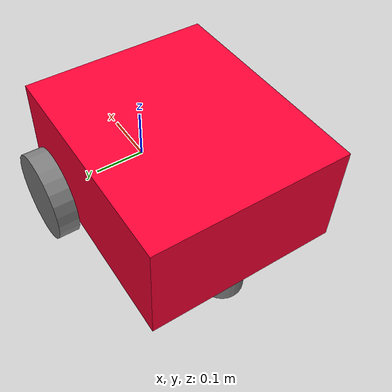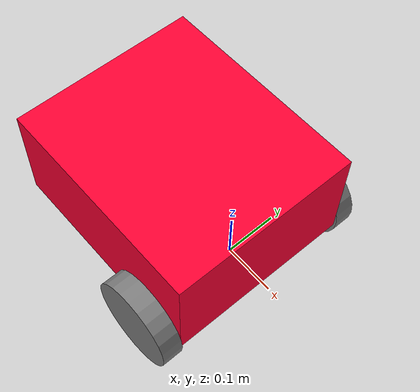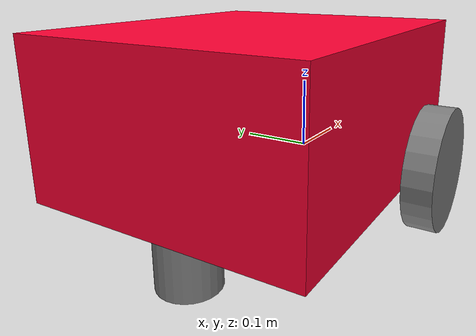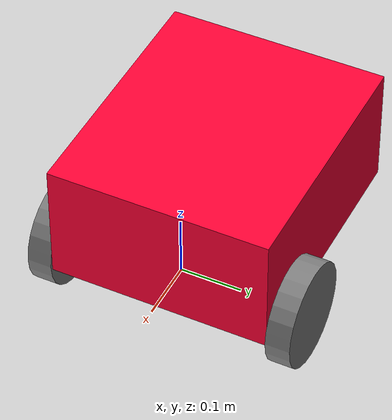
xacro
<?xml version="1.0"?>
<robot xmlns:xacro="http://www.ros.org/wiki/xacro">

    <xacro:include filename="materials.xacro"/>
    <xacro:include filename="inertial_macros.xacro"/>

    <link name="base_link">
        <origin xyz="0 0 0.01"/>
    </link>

     <joint name="base_footprint_joint" type="fixed">
        <parent link="base_link"/>
        <child link="base_footprint"/>
        <origin xyz="-0.14 0 -0.01" rpy="0 0 0"/>
    </joint>

    <link name="base_footprint">
    </link>

    <joint name="chassis_joint" type="fixed">
        <parent link="base_link"/>
        <child link="chassis"/>
        <origin xyz="0 0 0.0023" rpy="0 0 0"/>
    </joint>

    <link name="chassis">
        <visual>
            <origin xyz="-0.13 0 0.09"/>
            <geometry>
                <box size="0.42 0.36 0.2"/>
            </geometry>
            <material name="red"/>
        </visual>
        <xacro:inertial_box mass="4" x="0.5" y="0.4" z="0.3">
            <origin xyz="-0.16 0 0.12" rpy="0 0 0"/>
        </xacro:inertial_box>
    </link>

    <gazebo reference="chassis">
        <material>Gazebo/Red</material>
    </gazebo>

    <joint name="left_wheel_joint" type="continuous">
        <parent link="base_link"/>
        <child link="left_wheel"/>
        <origin xyz="0 0.2 0" rpy="-${pi/2} 0 0"/>
        <axis xyz="0 0 1"/>
    </joint>

    <link name="left_wheel">
        <visual>
            <geometry>
                <cylinder radius="0.085" length="0.04"/>
            </geometry>
            <material name="gray"/>
        </visual>
        <collision>
            <geometry>
                <sphere radius="0.085"/>
            </geometry>
        </collision>
        <xacro:inertial_cylinder mass="3" radius="0.085" length="0.04">
            <origin xyz="0 0 0" rpy="0 0 0"/>
        </xacro:inertial_cylinder>
    </link>

    <gazebo reference="left_wheel">
        <material>Gazebo/Black</material>
    </gazebo>

    <joint name="right_wheel_joint" type="continuous">
        <parent link="base_link"/>
        <child link="right_wheel"/>
        <origin xyz="0 -0.2 0" rpy="${pi/2} 0 0"/>
        <axis xyz="0 0 -1"/>
    </joint>

    <link name="right_wheel">
        <visual>
            <geometry>
                <cylinder radius="0.085" length="0.04"/>
            </geometry>
            <material name="gray"/>
        </visual>
        <collision>
            <geometry>
                <sphere radius="0.085" />
            </geometry>
        </collision>
        <xacro:inertial_cylinder mass="3" radius="0.085" length="0.04">
            <origin xyz="0 0 0" rpy="0 0 0"/>
        </xacro:inertial_cylinder>
    </link>

    <gazebo reference="right_wheel">
        <material>Gazebo/Black</material>
    </gazebo>

    <joint name="caster_wheel_joint" type="fixed">
        <parent link="base_link"/>
        <child link="caster_wheel"/>
        <origin xyz="-0.28 0 -0.045" />
    </joint>

    <link name="caster_wheel">
        <visual>
            <geometry>
                <cylinder radius="0.04" length="0.09"/>
            </geometry>
            <material name="gray"/>
        </visual>
        <collision>
            <geometry>
                <cylinder radius="0.04" length="0.08"/>
            </geometry>
        </collision>
        <xacro:inertial_sphere mass="0.1" radius="0.05">
            <origin xyz="0 0 0" rpy="0 0 0"/>
        </xacro:inertial_sphere>
    </link>

    <gazebo reference="caster_wheel">
        <material>Gazebo/Black</material>
        <mu1 value="0.001"/>
        <mu2 value="0.001"/>
    </gazebo>

</robot>

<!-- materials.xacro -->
<robot xmlns:xacro="http://www.ros.org/wiki/xacro">

<material name="white">
    <color rgba="1 1 1 1"/>
</material>

<material name="red">
    <color rgba="1 0 0.2 1"/>
</material>

<material name="blue">
    <color rgba="0.2 0.2 1 1"/>
</material>

<material name="black">
    <color rgba="0 0 0 1"/>
</material>

<material name="gray">
    <color rgba="0.5 0.5 0.5 1"/>
</material>

</robot>

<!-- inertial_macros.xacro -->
<robot xmlns:xacro="http://www.ros.org/wiki/xacro" >

    <!-- Specify some standard inertial calculations https://en.wikipedia.org/wiki/List_of_moments_of_inertia -->
    <!-- These make use of xacro's mathematical functionality -->

    <xacro:macro name="inertial_sphere" params="mass radius *origin">
        <inertial>
            <xacro:insert_block name="origin"/>
            <mass value="${mass}"/>
            <inertia ixx="${(2/5) * mass * (radius*radius)}" ixy="0.0" ixz="0.0"
                    iyy="${(2/5) * mass * (radius*radius)}" iyz="0.0"
                    izz="${(2/5) * mass * (radius*radius)}"/>
        </inertial>
    </xacro:macro>

    <xacro:macro name="inertial_box" params="mass x y z *origin">
        <inertial>
            <xacro:insert_block name="origin"/>
            <mass value="${mass}"/>
            <inertia ixx="${(1/12) * mass * (y*y+z*z)}" ixy="0.0" ixz="0.0"
                    iyy="${(1/12) * mass * (x*x+z*z)}" iyz="0.0"
                    izz="${(1/12) * mass * (x*x+y*y)}"/>
        </inertial>
    </xacro:macro>

    <xacro:macro name="inertial_cylinder" params="mass length radius *origin">
        <inertial>
            <xacro:insert_block name="origin"/>
            <mass value="${mass}"/>
            <inertia ixx="${(1/12) * mass * (3*radius*radius + length*length)}" ixy="0.0" ixz="0.0"
                    iyy="${(1/12) * mass * (3*radius*radius + length*length)}" iyz="0.0"
                    izz="${(1/2) * mass * (radius*radius)}"/>
        </inertial>
    </xacro:macro>

</robot>
